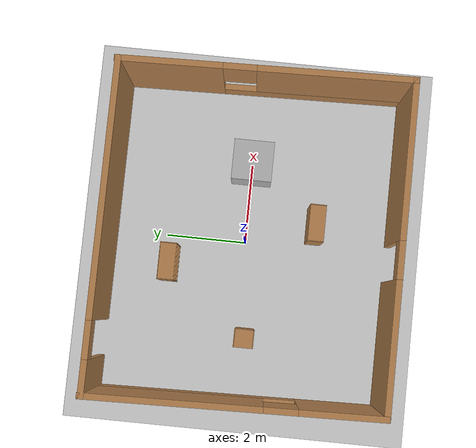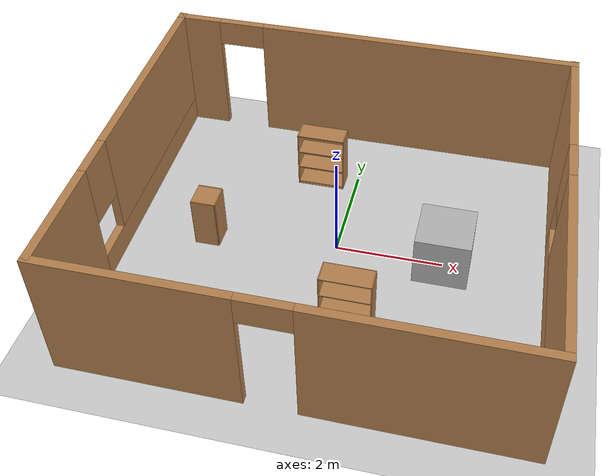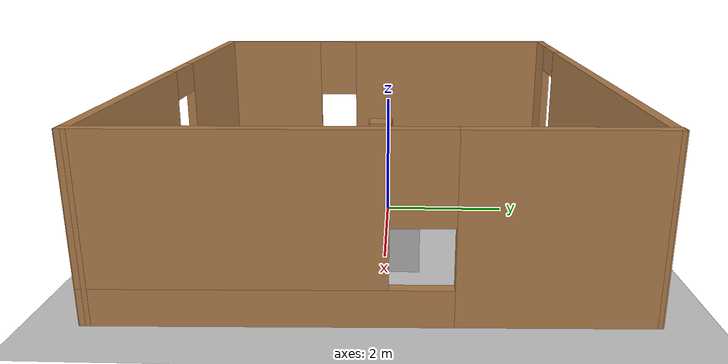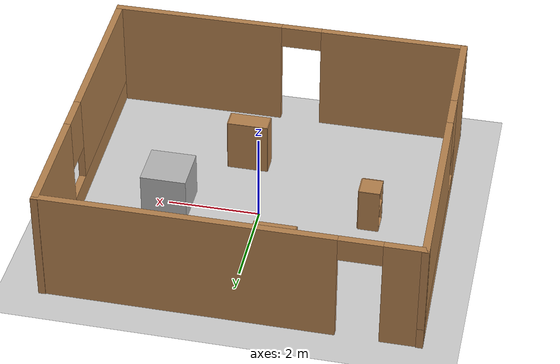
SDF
<sdf version="1.7">
 <world name="default">
  <light name="sun" type="directional">
   <pose>0 0 10 0 -0 0</pose>
   <diffuse>0.8 0.8 0.8 1</diffuse>
   <specular>0.2 0.2 0.2 1</specular>
   <attenuation>
    <range>1000</range>
    <constant>0.9</constant>
    <linear>0.01</linear>
    <quadratic>0.001</quadratic>
   </attenuation>
   <direction>-0.5 0.1 -0.9</direction>
   <spot><inner_angle>0</inner_angle><outer_angle>0</outer_angle><falloff>0</falloff></spot>
  </light>
  <model name="ground_plane">
   <static>1</static>
   <link name="link">
    <collision name="collision">
     <geometry><plane><normal>0 0 1</normal><size>100 100</size></plane></geometry>
     <surface>
      <contact><collide_bitmask>65535</collide_bitmask></contact>
      <friction><ode><mu>100</mu><mu2>50</mu2></ode></friction>
     </surface>
    </collision>
    <visual name="visual">
     <cast_shadows>0</cast_shadows>
     <geometry><plane><normal>0 0 1</normal><size>100 100</size></plane></geometry>
     <material>
      <script><uri>file://media/materials/scripts/gazebo.material</uri><name>Gazebo/Grey</name></script>
     </material>
    </visual>
   </link>
  </model>
  <gravity>0 0 -9.8</gravity>
  <magnetic_field>6e-06 2.3e-05 -4.2e-05</magnetic_field>
  <atmosphere type="adiabatic"/>
  <physics type="ode">
   <max_step_size>0.001</max_step_size>
   <real_time_factor>1</real_time_factor>
   <real_time_update_rate>1000</real_time_update_rate>
  </physics>
  <scene><ambient>0.4 0.4 0.4 1</ambient><background>0.7 0.7 0.7 1</background><shadows>1</shadows></scene>
  <audio><device>default</device></audio>
  <spherical_coordinates>
   <surface_model>EARTH_WGS84</surface_model>
   <latitude_deg>0</latitude_deg>
   <longitude_deg>0</longitude_deg>
   <elevation>0</elevation>
   <heading_deg>0</heading_deg>
  </spherical_coordinates>
  <model name="test">
   <pose>3e-05 -0.131703 0 0 -0 0</pose>
   <link name="Wall_1">
    <pose>-3.925 0.004204 0 0 -0 1.59224</pose>
    <visual name="Wall_1_Visual_0">
     <pose>-2.52938 0 1.25 0 -0 0</pose>
     <geometry><box><size>2.08341 0.15 2.5</size></box></geometry>
     <material>
      <script><uri>file://media/materials/scripts/gazebo.material</uri><name>Gazebo/Wood</name></script>
      <ambient>1 1 1 1</ambient>
     </material>
     <meta><layer>0</layer></meta>
    </visual>
    <collision name="Wall_1_Collision_0">
     <geometry><box><size>2.08341 0.15 2.5</size></box></geometry>
     <pose>-2.52938 0 1.25 0 -0 0</pose>
    </collision>
    <visual name="Wall_1_Visual_1">
     <pose>1.04171 0 0.25 0 -0 0</pose>
     <geometry><box><size>5.05876 0.15 0.5</size></box></geometry>
     <material>
      <script><uri>file://media/materials/scripts/gazebo.material</uri><name>Gazebo/Wood</name></script>
      <ambient>1 1 1 1</ambient>
     </material>
     <meta><layer>0</layer></meta>
    </visual>
    <collision name="Wall_1_Collision_1">
     <geometry><box><size>5.05876 0.15 0.5</size></box></geometry>
     <pose>1.04171 0 0.25 0 -0 0</pose>
    </collision>
    <visual name="Wall_1_Visual_2">
     <pose>1.44171 0 1.5 0 -0 0</pose>
     <geometry><box><size>4.25876 0.15 2</size></box></geometry>
     <material>
      <script><uri>file://media/materials/scripts/gazebo.material</uri><name>Gazebo/Wood</name></script>
      <ambient>1 1 1 1</ambient>
     </material>
     <meta><layer>0</layer></meta>
    </visual>
    <collision name="Wall_1_Collision_2">
     <geometry><box><size>4.25876 0.15 2</size></box></geometry>
     <pose>1.44171 0 1.5 0 -0 0</pose>
    </collision>
    <visual name="Wall_1_Visual_3">
     <pose>-1.08767 0 1.9 0 -0 0</pose>
     <geometry><box><size>0.8 0.15 1.2</size></box></geometry>
     <material>
      <script><uri>file://media/materials/scripts/gazebo.material</uri><name>Gazebo/Wood</name></script>
      <ambient>1 1 1 1</ambient>
     </material>
     <meta><layer>0</layer></meta>
    </visual>
    <collision name="Wall_1_Collision_3">
     <geometry><box><size>0.8 0.15 1.2</size></box></geometry>
     <pose>-1.08767 0 1.9 0 -0 0</pose>
    </collision>
   </link>
   <link name="Wall_2">
    <pose>-0.07498 3.48199 0 0 -0 0</pose>
    <visual name="Wall_2_Visual_0">
     <pose>-3.5525 0 1.25 0 -0 0</pose>
     <geometry><box><size>0.895 0.15 2.5</size></box></geometry>
     <material>
      <script><uri>file://media/materials/scripts/gazebo.material</uri><name>Gazebo/Wood</name></script>
      <ambient>1 1 1 1</ambient>
     </material>
     <meta><layer>0</layer></meta>
    </visual>
    <collision name="Wall_2_Collision_0">
     <geometry><box><size>0.895 0.15 2.5</size></box></geometry>
     <pose>-3.5525 0 1.25 0 -0 0</pose>
    </collision>
    <visual name="Wall_2_Visual_1">
     <pose>0.8975 0 1.25 0 -0 0</pose>
     <geometry><box><size>6.205 0.15 2.5</size></box></geometry>
     <material>
      <script><uri>file://media/materials/scripts/gazebo.material</uri><name>Gazebo/Wood</name></script>
      <ambient>1 1 1 1</ambient>
     </material>
     <meta><layer>0</layer></meta>
    </visual>
    <collision name="Wall_2_Collision_1">
     <geometry><box><size>6.205 0.15 2.5</size></box></geometry>
     <pose>0.8975 0 1.25 0 -0 0</pose>
    </collision>
    <visual name="Wall_2_Visual_2">
     <pose>-2.655 0 2.25 0 -0 0</pose>
     <geometry><box><size>0.9 0.15 0.5</size></box></geometry>
     <material>
      <script><uri>file://media/materials/scripts/gazebo.material</uri><name>Gazebo/Wood</name></script>
      <ambient>1 1 1 1</ambient>
     </material>
     <meta><layer>0</layer></meta>
    </visual>
    <collision name="Wall_2_Collision_2">
     <geometry><box><size>0.9 0.15 0.5</size></box></geometry>
     <pose>-2.655 0 2.25 0 -0 0</pose>
    </collision>
   </link>
   <link name="Wall_3">
    <pose>3.925 0.004204 0 0 -0 -1.54935</pose>
    <visual name="Wall_3_Visual_0">
     <pose>-2.29631 0 1.25 0 -0 0</pose>
     <geometry><box><size>2.54956 0.15 2.5</size></box></geometry>
     <material>
      <script><uri>file://media/materials/scripts/gazebo.material</uri><name>Gazebo/Wood</name></script>
      <ambient>1 1 1 1</ambient>
     </material>
     <meta><layer>0</layer></meta>
    </visual>
    <collision name="Wall_3_Collision_0">
     <geometry><box><size>2.54956 0.15 2.5</size></box></geometry>
     <pose>-2.29631 0 1.25 0 -0 0</pose>
    </collision>
    <visual name="Wall_3_Visual_1">
     <pose>1.27478 0 0.25 0 -0 0</pose>
     <geometry><box><size>4.59261 0.15 0.5</size></box></geometry>
     <material>
      <script><uri>file://media/materials/scripts/gazebo.material</uri><name>Gazebo/Wood</name></script>
      <ambient>1 1 1 1</ambient>
     </material>
     <meta><layer>0</layer></meta>
    </visual>
    <collision name="Wall_3_Collision_1">
     <geometry><box><size>4.59261 0.15 0.5</size></box></geometry>
     <pose>1.27478 0 0.25 0 -0 0</pose>
    </collision>
    <visual name="Wall_3_Visual_2">
     <pose>1.67478 0 1.5 0 -0 0</pose>
     <geometry><box><size>3.79261 0.15 2</size></box></geometry>
     <material>
      <script><uri>file://media/materials/scripts/gazebo.material</uri><name>Gazebo/Wood</name></script>
      <ambient>1 1 1 1</ambient>
     </material>
     <meta><layer>0</layer></meta>
    </visual>
    <collision name="Wall_3_Collision_2">
     <geometry><box><size>3.79261 0.15 2</size></box></geometry>
     <pose>1.67478 0 1.5 0 -0 0</pose>
    </collision>
    <visual name="Wall_3_Visual_3">
     <pose>-0.621526 0 1.9 0 -0 0</pose>
     <geometry><box><size>0.8 0.15 1.2</size></box></geometry>
     <material>
      <script><uri>file://media/materials/scripts/gazebo.material</uri><name>Gazebo/Wood</name></script>
      <ambient>1 1 1 1</ambient>
     </material>
     <meta><layer>0</layer></meta>
    </visual>
    <collision name="Wall_3_Collision_3">
     <geometry><box><size>0.8 0.15 1.2</size></box></geometry>
     <pose>-0.621526 0 1.9 0 -0 0</pose>
    </collision>
   </link>
   <link name="Wall_4">
    <pose>0.07498 -3.50108 0 0 -0 3.14159</pose>
    <visual name="Wall_4_Visual_0">
     <pose>-2.0825 0 1.25 0 -0 0</pose>
     <geometry><box><size>3.835 0.15 2.5</size></box></geometry>
     <material>
      <script><uri>file://media/materials/scripts/gazebo.material</uri><name>Gazebo/Wood</name></script>
      <ambient>1 1 1 1</ambient>
     </material>
     <meta><layer>0</layer></meta>
    </visual>
    <collision name="Wall_4_Collision_0">
     <geometry><box><size>3.835 0.15 2.5</size></box></geometry>
     <pose>-2.0825 0 1.25 0 -0 0</pose>
    </collision>
    <visual name="Wall_4_Visual_1">
     <pose>2.3675 0 1.25 0 -0 0</pose>
     <geometry><box><size>3.265 0.15 2.5</size></box></geometry>
     <material>
      <script><uri>file://media/materials/scripts/gazebo.material</uri><name>Gazebo/Wood</name></script>
      <ambient>1 1 1 1</ambient>
     </material>
     <meta><layer>0</layer></meta>
    </visual>
    <collision name="Wall_4_Collision_1">
     <geometry><box><size>3.265 0.15 2.5</size></box></geometry>
     <pose>2.3675 0 1.25 0 -0 0</pose>
    </collision>
    <visual name="Wall_4_Visual_2">
     <pose>0.285 0 2.25 0 -0 0</pose>
     <geometry><box><size>0.9 0.15 0.5</size></box></geometry>
     <material>
      <script><uri>file://media/materials/scripts/gazebo.material</uri><name>Gazebo/Wood</name></script>
      <ambient>1 1 1 1</ambient>
     </material>
     <meta><layer>0</layer></meta>
    </visual>
    <collision name="Wall_4_Collision_2">
     <geometry><box><size>0.9 0.15 0.5</size></box></geometry>
     <pose>0.285 0 2.25 0 -0 0</pose>
    </collision>
   </link>
   <static>1</static>
  </model>
  <model name="bookshelf">
   <static>1</static>
   <link name="link">
    <inertial><mass>1</mass></inertial>
    <collision name="back">
     <pose>0 0.005 0.6 0 -0 0</pose>
     <geometry><box><size>0.9 0.01 1.2</size></box></geometry>
    </collision>
    <visual name="visual1">
     <pose>0 0.005 0.6 0 -0 0</pose>
     <geometry><box><size>0.9 0.01 1.2</size></box></geometry>
     <material>
      <script><uri>file://media/materials/scripts/gazebo.material</uri><name>Gazebo/Wood</name></script>
     </material>
    </visual>
    <collision name="left_side">
     <pose>0.45 -0.195 0.6 0 -0 0</pose>
     <geometry><box><size>0.02 0.4 1.2</size></box></geometry>
    </collision>
    <visual name="visual2">
     <pose>0.45 -0.195 0.6 0 -0 0</pose>
     <geometry><box><size>0.02 0.4 1.2</size></box></geometry>
     <material>
      <script><uri>file://media/materials/scripts/gazebo.material</uri><name>Gazebo/Wood</name></script>
     </material>
    </visual>
    <collision name="right_side">
     <pose>-0.45 -0.195 0.6 0 -0 0</pose>
     <geometry><box><size>0.02 0.4 1.2</size></box></geometry>
    </collision>
    <visual name="visual3">
     <pose>-0.45 -0.195 0.6 0 -0 0</pose>
     <geometry><box><size>0.02 0.4 1.2</size></box></geometry>
     <material>
      <script><uri>file://media/materials/scripts/gazebo.material</uri><name>Gazebo/Wood</name></script>
     </material>
    </visual>
    <collision name="bottom">
     <pose>0 -0.195 0.03 0 -0 0</pose>
     <geometry><box><size>0.88 0.4 0.06</size></box></geometry>
    </collision>
    <visual name="visual4">
     <pose>0 -0.195 0.03 0 -0 0</pose>
     <geometry><box><size>0.88 0.4 0.06</size></box></geometry>
     <material>
      <script><uri>file://media/materials/scripts/gazebo.material</uri><name>Gazebo/Wood</name></script>
     </material>
    </visual>
    <collision name="top">
     <pose>0 -0.195 1.19 0 -0 0</pose>
     <geometry><box><size>0.88 0.4 0.02</size></box></geometry>
    </collision>
    <visual name="visual5">
     <pose>0 -0.195 1.19 0 -0 0</pose>
     <geometry><box><size>0.88 0.4 0.02</size></box></geometry>
     <material>
      <script><uri>file://media/materials/scripts/gazebo.material</uri><name>Gazebo/Wood</name></script>
     </material>
    </visual>
    <collision name="low_shelf">
     <pose>0 -0.195 0.43 0 -0 0</pose>
     <geometry><box><size>0.88 0.4 0.02</size></box></geometry>
    </collision>
    <visual name="visual6">
     <pose>0 -0.195 0.43 0 -0 0</pose>
     <geometry><box><size>0.88 0.4 0.02</size></box></geometry>
     <material>
      <script><uri>file://media/materials/scripts/gazebo.material</uri><name>Gazebo/Wood</name></script>
     </material>
    </visual>
    <collision name="high_shelf">
     <pose>0 -0.195 0.8 0 -0 0</pose>
     <geometry><box><size>0.88 0.4 0.02</size></box></geometry>
    </collision>
    <visual name="visual7">
     <pose>0 -0.195 0.8 0 -0 0</pose>
     <geometry><box><size>0.88 0.4 0.02</size></box></geometry>
     <material>
      <script><uri>file://media/materials/scripts/gazebo.material</uri><name>Gazebo/Wood</name></script>
     </material>
    </visual>
   </link>
   <pose>-0.700905 2.03785 0 0 -0 0</pose>
  </model>
  <model name="cabinet">
   <static>1</static>
   <link name="cabinet_bottom_plate">
    <inertial>
     <pose>0 0 -1 0 -0 0</pose>
     <inertia><ixx>2.05</ixx><ixy>0</ixy><ixz>0</ixz><iyy>2.05</iyy><iyz>0</iyz><izz>2.05</izz></inertia>
     <mass>25</mass>
    </inertial>
    <collision name="cabinet_bottom_plate_geom">
     <pose>0 0 0.01 0 -0 0</pose>
     <geometry><box><size>0.45 0.45 0.02</size></box></geometry>
    </collision>
    <visual name="cabinet_bottom_plate_geom_visual">
     <pose>0 0 0.01 0 -0 0</pose>
     <geometry><box><size>0.45 0.45 0.02</size></box></geometry>
     <material>
      <script><uri>file://media/materials/scripts/gazebo.material</uri><name>Gazebo/Wood</name></script>
     </material>
    </visual>
    <collision name="cabinet_bottom_plate_geom_cabinet_back_plate">
     <pose>0.235 0 0.51 0 -0 0</pose>
     <geometry><box><size>0.02 0.45 1.02</size></box></geometry>
    </collision>
    <visual name="cabinet_bottom_plate_geom_cabinet_back_plate_visual">
     <pose>0.235 0 0.51 0 -0 0</pose>
     <geometry><box><size>0.02 0.45 1.02</size></box></geometry>
     <material>
      <script><uri>file://media/materials/scripts/gazebo.material</uri><name>Gazebo/Wood</name></script>
     </material>
    </visual>
    <collision name="cabinet_bottom_plate_geom_cabinet_left_plate">
     <pose>0 0.235 0.51 0 -0 0</pose>
     <geometry><box><size>0.45 0.02 1.02</size></box></geometry>
    </collision>
    <visual name="cabinet_bottom_plate_geom_cabinet_left_plate_visual">
     <pose>0 0.235 0.51 0 -0 0</pose>
     <geometry><box><size>0.45 0.02 1.02</size></box></geometry>
     <material>
      <script><uri>file://media/materials/scripts/gazebo.material</uri><name>Gazebo/Wood</name></script>
     </material>
    </visual>
    <collision name="cabinet_bottom_plate_geom_cabinet_middle_plate">
     <pose>0 0 0.51 0 -0 0</pose>
     <geometry><box><size>0.45 0.45 0.02</size></box></geometry>
    </collision>
    <visual name="cabinet_bottom_plate_geom_cabinet_middle_plate_visual">
     <pose>0 0 0.51 0 -0 0</pose>
     <geometry><box><size>0.45 0.45 0.02</size></box></geometry>
     <material>
      <script><uri>file://media/materials/scripts/gazebo.material</uri><name>Gazebo/Wood</name></script>
     </material>
    </visual>
    <collision name="cabinet_bottom_plate_geom_cabinet_right_plate">
     <pose>0 -0.235 0.51 0 -0 0</pose>
     <geometry><box><size>0.45 0.02 1.02</size></box></geometry>
    </collision>
    <visual name="cabinet_bottom_plate_geom_cabinet_right_plate_visual">
     <pose>0 -0.235 0.51 0 -0 0</pose>
     <geometry><box><size>0.45 0.02 1.02</size></box></geometry>
     <material>
      <script><uri>file://media/materials/scripts/gazebo.material</uri><name>Gazebo/Wood</name></script>
     </material>
    </visual>
    <collision name="cabinet_bottom_plate_geom_cabinet_top_plate">
     <pose>0 0 1.01 0 -0 0</pose>
     <geometry><box><size>0.45 0.45 0.02</size></box></geometry>
    </collision>
    <visual name="cabinet_bottom_plate_geom_cabinet_top_plate_visual">
     <pose>0 0 1.01 0 -0 0</pose>
     <geometry><box><size>0.45 0.45 0.02</size></box></geometry>
     <material>
      <script><uri>file://media/materials/scripts/gazebo.material</uri><name>Gazebo/Wood</name></script>
     </material>
    </visual>
   </link>
   <pose>-2.39981 -0.20536 0 0 -0 0</pose>
  </model>
  <model name="test_box">
   <static>true</static>
   <pose>2 0 0.5 0 0 0</pose>
   <link name="link">
    <collision name="collision"><geometry><box><size>1 1 1</size></box></geometry></collision>
    <visual name="visual">
     <geometry><box><size>1 1 1</size></box></geometry>
     <material><ambient>0.7 0.7 0.7 1</ambient></material>
    </visual>
   </link>
  </model>
  <model name="bookshelf_0">
   <static>1</static>
   <link name="link">
    <inertial><mass>1</mass></inertial>
    <collision name="back">
     <pose>0 0.005 0.6 0 -0 0</pose>
     <geometry><box><size>0.9 0.01 1.2</size></box></geometry>
    </collision>
    <visual name="visual1">
     <pose>0 0.005 0.6 0 -0 0</pose>
     <geometry><box><size>0.9 0.01 1.2</size></box></geometry>
     <material>
      <script><uri>file://media/materials/scripts/gazebo.material</uri><name>Gazebo/Wood</name></script>
     </material>
    </visual>
    <collision name="left_side">
     <pose>0.45 -0.195 0.6 0 -0 0</pose>
     <geometry><box><size>0.02 0.4 1.2</size></box></geometry>
    </collision>
    <visual name="visual2">
     <pose>0.45 -0.195 0.6 0 -0 0</pose>
     <geometry><box><size>0.02 0.4 1.2</size></box></geometry>
     <material>
      <script><uri>file://media/materials/scripts/gazebo.material</uri><name>Gazebo/Wood</name></script>
     </material>
    </visual>
    <collision name="right_side">
     <pose>-0.45 -0.195 0.6 0 -0 0</pose>
     <geometry><box><size>0.02 0.4 1.2</size></box></geometry>
    </collision>
    <visual name="visual3">
     <pose>-0.45 -0.195 0.6 0 -0 0</pose>
     <geometry><box><size>0.02 0.4 1.2</size></box></geometry>
     <material>
      <script><uri>file://media/materials/scripts/gazebo.material</uri><name>Gazebo/Wood</name></script>
     </material>
    </visual>
    <collision name="bottom">
     <pose>0 -0.195 0.03 0 -0 0</pose>
     <geometry><box><size>0.88 0.4 0.06</size></box></geometry>
    </collision>
    <visual name="visual4">
     <pose>0 -0.195 0.03 0 -0 0</pose>
     <geometry><box><size>0.88 0.4 0.06</size></box></geometry>
     <material>
      <script><uri>file://media/materials/scripts/gazebo.material</uri><name>Gazebo/Wood</name></script>
     </material>
    </visual>
    <collision name="top">
     <pose>0 -0.195 1.19 0 -0 0</pose>
     <geometry><box><size>0.88 0.4 0.02</size></box></geometry>
    </collision>
    <visual name="visual5">
     <pose>0 -0.195 1.19 0 -0 0</pose>
     <geometry><box><size>0.88 0.4 0.02</size></box></geometry>
     <material>
      <script><uri>file://media/materials/scripts/gazebo.material</uri><name>Gazebo/Wood</name></script>
     </material>
    </visual>
    <collision name="low_shelf">
     <pose>0 -0.195 0.43 0 -0 0</pose>
     <geometry><box><size>0.88 0.4 0.02</size></box></geometry>
    </collision>
    <visual name="visual6">
     <pose>0 -0.195 0.43 0 -0 0</pose>
     <geometry><box><size>0.88 0.4 0.02</size></box></geometry>
     <material>
      <script><uri>file://media/materials/scripts/gazebo.material</uri><name>Gazebo/Wood</name></script>
     </material>
    </visual>
    <collision name="high_shelf">
     <pose>0 -0.195 0.8 0 -0 0</pose>
     <geometry><box><size>0.88 0.4 0.02</size></box></geometry>
    </collision>
    <visual name="visual7">
     <pose>0 -0.195 0.8 0 -0 0</pose>
     <geometry><box><size>0.88 0.4 0.02</size></box></geometry>
     <material>
      <script><uri>file://media/materials/scripts/gazebo.material</uri><name>Gazebo/Wood</name></script>
     </material>
    </visual>
   </link>
   <pose>0.581159 -1.51942 0 0 -0 0</pose>
  </model>
 </world>
</sdf>
